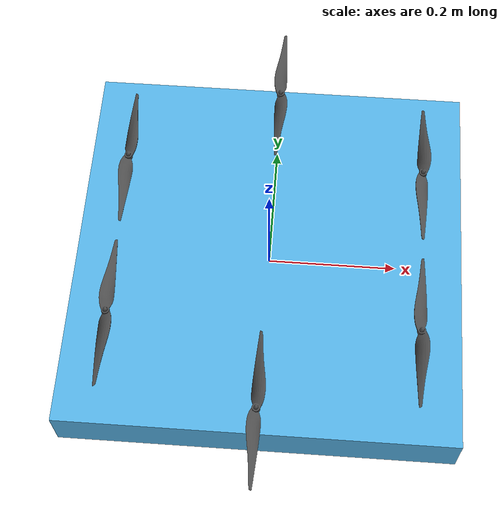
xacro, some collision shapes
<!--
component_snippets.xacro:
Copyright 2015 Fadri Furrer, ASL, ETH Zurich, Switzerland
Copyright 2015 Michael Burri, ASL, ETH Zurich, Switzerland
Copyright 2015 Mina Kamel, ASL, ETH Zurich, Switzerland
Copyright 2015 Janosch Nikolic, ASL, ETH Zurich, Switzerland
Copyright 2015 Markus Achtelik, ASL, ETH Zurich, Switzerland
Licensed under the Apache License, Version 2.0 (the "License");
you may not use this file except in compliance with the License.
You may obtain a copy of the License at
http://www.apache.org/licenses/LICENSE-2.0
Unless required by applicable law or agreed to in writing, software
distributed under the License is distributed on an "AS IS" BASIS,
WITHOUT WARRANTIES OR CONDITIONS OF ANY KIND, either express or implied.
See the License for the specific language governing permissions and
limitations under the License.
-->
<?xml version="1.0"?>

<robot name="dji_f550_c1"
  xmlns:xacro="http://ros.org/wiki/xacro">
  <!-- Properties that can be assigned at build time as arguments.
  Is there a reason not to make all properties arguments?
  -->
  <xacro:arg name='robot_id' default='1' />
  <xacro:arg name='mavlink_addr' default='INADDR_ANY' />
  <xacro:arg name='mavlink_udp_port' default='14560' />
  <xacro:arg name='visual_material' default='DarkGrey' />
  <xacro:arg name='enable_mavlink_interface' default='true' />
  <xacro:arg name='enable_gps_plugin' default='true' />
  <xacro:arg name='gps_noise' default='true' />
  <xacro:arg name='enable_ground_truth' default='false' />
  <xacro:arg name='enable_logging' default='false' />

  <!-- macros for gazebo plugins, sensors -->
  <xacro:include filename="$(find robots_description)/urdf/component_snippets.xacro" />

  <!-- Instantiate dji_f550 "mechanics" -->
  <xacro:include filename="$(find uavs_description)/models/dji_f550_c1/geometry.xacro" />

  <xacro:rgbd_camera_macro
    namespace="dji_f550"
    parent_link="base_link"
    camera_suffix="$(arg robot_id)"
    frame_rate="30"
    horizontal_fov="1.57108"
    focal_length="0"
    image_width="848"
    image_height="480"
    image_format="R8G8B8"
    min_distance="0.01"
    max_distance="100"
    baseline="0.05"
    noise_mean="0.1"
    noise_stddev="0.001"
    >
  <origin xyz="0.16 0 -0.04" rpy="0 0.41887902047863906 0" />
</xacro:rgbd_camera_macro> <!-- focal_length = 0 -> openni plugin computes focal lenght with horizontal field of view  -->

  <xacro:if value="$(arg enable_gps_plugin)">
    <!-- Instantiate gps plugin. -->
    <xacro:gps_plugin_macro namespace="${namespace}" gps_noise="$(arg gps_noise)">
    </xacro:gps_plugin_macro>
  </xacro:if>

  <xacro:if value="$(arg enable_mavlink_interface)">
    <!-- Instantiate mavlink telemetry interface. -->
    <xacro:mavlink_interface_macro
    namespace="${namespace}"
    imu_sub_topic="/imu"
    mavlink_addr="$(arg mavlink_addr)"
    mavlink_udp_port="$(arg mavlink_udp_port)">
    </xacro:mavlink_interface_macro>
  </xacro:if>

  <!-- Mount an ADIS16448 IMU. -->
  <xacro:imu_plugin_macro
  namespace="${namespace}"
  imu_suffix=""
  parent_link="base_link"
  imu_topic="/imu"
  mass_imu_sensor="0.015"
  gyroscope_noise_density="0.0003394"
  gyroscopoe_random_walk="0.000038785"
  gyroscope_bias_correlation_time="1000.0"
  gyroscope_turn_on_bias_sigma="0.0087"
  accelerometer_noise_density="0.004"
  accelerometer_random_walk="0.006"
  accelerometer_bias_correlation_time="300.0"
  accelerometer_turn_on_bias_sigma="0.1960">
    <inertia
    ixx="0.00001" ixy="0.0" ixz="0.0"
    iyy="0.00001" iyz="0.0" izz="0.00001" />
    <origin xyz="0 0 0" rpy="0 0 0" />
  </xacro:imu_plugin_macro>

  <xacro:if
  value="$(arg enable_ground_truth)">
    <!-- Mount an IMU providing ground truth. -->
    <xacro:imu_plugin_macro
    namespace="${namespace}"
    imu_suffix="gt"
    parent_link="base_link"
    imu_topic="ground_truth/imu"
    mass_imu_sensor="0.00001"
    gyroscope_noise_density="0.0"
    gyroscopoe_random_walk="0.0"
    gyroscope_bias_correlation_time="1000.0"
    gyroscope_turn_on_bias_sigma="0.0"
    accelerometer_noise_density="0.0"
    accelerometer_random_walk="0.0"
    accelerometer_bias_correlation_time="300.0"
    accelerometer_turn_on_bias_sigma="0.0">
      <inertia
      ixx="0.00001" ixy="0.0" ixz="0.0"
      iyy="0.00001" iyz="0.0" izz="0.00001" />
      <origin
      xyz="0 0 0"
      rpy="0 0 0" />
    </xacro:imu_plugin_macro>

    <!-- Mount a generic odometry sensor providing ground truth. -->
    <xacro:odometry_plugin_macro
    namespace="${namespace}/ground_truth"
    odometry_sensor_suffix="gt"
    parent_link="base_link"
    pose_topic="pose"
    pose_with_covariance_topic="pose_with_covariance"
    position_topic="position"
    transform_topic="transform"
    odometry_topic="odometry"
    parent_frame_id="world"
    mass_odometry_sensor="0.00001"
    measurement_divisor="1"
    measurement_delay="0"
    unknown_delay="0.0"
    noise_normal_position="0 0 0"
    noise_normal_quaternion="0 0 0"
    noise_normal_linear_velocity="0 0 0"
    noise_normal_angular_velocity="0 0 0"
    noise_uniform_position="0 0 0"
    noise_uniform_quaternion="0 0 0"
    noise_uniform_linear_velocity="0 0 0"
    noise_uniform_angular_velocity="0 0 0"
    enable_odometry_map="false"
    odometry_map=""
    image_scale="">
      <inertia ixx="0.00001"  ixy="0.0"  ixz="0.0"
               iyy="0.00001"  iyz="0.0"  izz="0.00001" /><!-- [kg.m^2] [kg.m^2] [kg.m^2] [kg.m^2] [kg.m^2] [kg.m^2] -->
      <origin xyz="0.0 0.0 0.0" rpy="0.0 0.0 0.0" />
    </xacro:odometry_plugin_macro>
  </xacro:if>

  <xacro:if value="$(arg enable_logging)">
    <!-- Instantiate a logger -->
    <xacro:bag_plugin_macro
    namespace="${namespace}"
    bag_file="$(arg log_file)"
    rotor_velocity_slowdown_sim="${rotor_velocity_slowdown_sim}">
    </xacro:bag_plugin_macro>
  </xacro:if>

</robot>

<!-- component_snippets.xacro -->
<robot xmlns:xacro="http://ros.org/wiki/xacro">
  <!-- Macro to add logging to a bag file. -->
  <xacro:macro name="bag_plugin_macro"
    params="namespace bag_file rotor_velocity_slowdown_sim">
    <gazebo>
      <plugin filename="librotors_gazebo_bag_plugin.so" name="rosbag">
        <robotNamespace>${namespace}</robotNamespace>
        <bagFileName>${bag_file}</bagFileName>
        <linkName>base_link</linkName>
        <frameId>base_link</frameId>
        <commandAttitudeThrustSubTopic>command/attitude</commandAttitudeThrustSubTopic>
        <commandAttitudeThrustPubTopic>command/attitude</commandAttitudeThrustPubTopic>
        <rotorVelocitySlowdownSim>${rotor_velocity_slowdown_sim}</rotorVelocitySlowdownSim>
      </plugin>
    </gazebo>
  </xacro:macro>

  <!-- Macro to add a camera. -->
  <xacro:macro name="camera_macro"
    params="namespace parent_link camera_suffix frame_rate
      horizontal_fov image_width image_height image_format min_distance
      max_distance noise_mean noise_stddev enable_visual *cylinder *origin">
    <link name="${namespace}/camera_${camera_suffix}_link">
      <collision>
        <origin xyz="0 0 0" rpy="0 0 0" />
        <geometry>
          <xacro:insert_block name="cylinder" />
        </geometry>
      </collision>
      <xacro:if value="${enable_visual}">
        <visual>
          <origin xyz="0 0 0" rpy="0 1.57079632679 0" />
          <geometry>
            <xacro:insert_block name="cylinder" />
          </geometry>
          <material name="red" />
        </visual>
      </xacro:if>
      <inertial>
        <mass value="1e-5" />
        <origin xyz="0 0 0" rpy="0 0 0" />
        <inertia ixx="1e-6" ixy="0" ixz="0" iyy="1e-6" iyz="0" izz="1e-6" />
      </inertial>
    </link>
    <joint name="${namespace}/camera_${camera_suffix}_joint" type="fixed">
      <xacro:insert_block name="origin" />
      <parent link="${parent_link}" />
      <child link="${namespace}/camera_${camera_suffix}_link" />
    </joint>
    <gazebo reference="${namespace}/camera_${camera_suffix}_link">
      <sensor type="camera" name="${namespace}_camera_${camera_suffix}">
        <update_rate>${frame_rate}</update_rate>
        <camera name="head">
          <horizontal_fov>${horizontal_fov}</horizontal_fov>
          <image>
            <width>${image_width}</width>
            <height>${image_height}</height>
            <format>${image_format}</format>
          </image>
          <clip>
            <near>${min_distance}</near>
            <far>${max_distance}</far>
          </clip>
          <noise>
            <type>gaussian</type>
            <!-- Noise is sampled independently per pixel on each frame.
                 That pixel's noise value is added to each of its color
                 channels, which at that point lie in the range [0,1]. -->
            <mean>${noise_mean}</mean>
            <stddev>${noise_stddev}</stddev>
          </noise>
        </camera>
        <plugin name="${namespace}_camera_${camera_suffix}_controller" filename="libgazebo_ros_camera.so">
          <robotNamespace>${namespace}</robotNamespace>
          <alwaysOn>true</alwaysOn>
          <updateRate>${frame_rate}</updateRate>
          <cameraName>camera_${camera_suffix}</cameraName>
          <imageTopicName>image_raw</imageTopicName>
          <cameraInfoTopicName>camera_info</cameraInfoTopicName>
          <frameName>camera_${camera_suffix}_link</frameName>
          <hackBaseline>0.0</hackBaseline>
          <distortionK1>0.0</distortionK1>
          <distortionK2>0.0</distortionK2>
          <distortionK3>0.0</distortionK3>
          <distortionT1>0.0</distortionT1>
          <distortionT2>0.0</distortionT2>
        </plugin>
      </sensor>
    </gazebo>
  </xacro:macro>

  <!-- Macro to add the controller interface. -->
  <xacro:macro name="controller_plugin_macro" params="namespace imu_sub_topic">
    <gazebo>
      <plugin name="controller_interface" filename="librotors_gazebo_controller_interface.so">
        <robotNamespace>${namespace}</robotNamespace>
        <commandAttitudeThrustSubTopic>/command/attitude</commandAttitudeThrustSubTopic>
        <commandRateThrustSubTopic>/command/rate</commandRateThrustSubTopic>
        <commandMotorSpeedSubTopic>/command/motor_speed</commandMotorSpeedSubTopic>
        <imuSubTopic>/${imu_sub_topic}</imuSubTopic>
        <motorSpeedCommandPubTopic>/gazebo/command/motor_speed</motorSpeedCommandPubTopic>
      </plugin>
    </gazebo>
  </xacro:macro>

  <!-- Macro to add the gps plugin. -->
  <xacro:macro name="gps_plugin_macro" params="namespace gps_noise">
    <gazebo>
      <plugin name='gps_plugin' filename='libgazebo_gps_plugin.so'>
        <robotNamespace>${namespace}</robotNamespace>
        <gpsNoise>${gps_noise}</gpsNoise>
      </plugin>
    </gazebo>
  </xacro:macro>

  <!-- Macro to add the mavlink interface. -->
  <xacro:macro name="mavlink_interface_macro" params="namespace imu_sub_topic mavlink_addr mavlink_udp_port">
    <gazebo>
      <plugin name="mavlink_interface" filename="librotors_gazebo_mavlink_interface.so">
        <robotNamespace>${namespace}</robotNamespace>
        <imuSubTopic>${imu_sub_topic}</imuSubTopic>
        <gpsSubTopic>/gps</gpsSubTopic>
        <mavlink_addr>$(arg mavlink_addr)</mavlink_addr>
        <mavlink_udp_port>$(arg mavlink_udp_port)</mavlink_udp_port>
        <motorSpeedCommandPubTopic>/gazebo/command/motor_speed</motorSpeedCommandPubTopic>
        <control_channels>
          <channel name="rotor1">
            <input_index>0</input_index>
            <input_offset>0</input_offset>
            <input_scaling>1000</input_scaling>
            <zero_position_disarmed>0</zero_position_disarmed>
            <zero_position_armed>100</zero_position_armed>
            <joint_control_type>velocity</joint_control_type>
          </channel>
          <channel name="rotor2">
            <input_index>1</input_index>
            <input_offset>0</input_offset>
            <input_scaling>1000</input_scaling>
            <zero_position_disarmed>0</zero_position_disarmed>
            <zero_position_armed>100</zero_position_armed>
            <joint_control_type>velocity</joint_control_type>
          </channel>
          <channel name="rotor3">
            <input_index>2</input_index>
            <input_offset>0</input_offset>
            <input_scaling>1000</input_scaling>
            <zero_position_disarmed>0</zero_position_disarmed>
            <zero_position_armed>100</zero_position_armed>
            <joint_control_type>velocity</joint_control_type>
          </channel>
          <channel name="rotor4">
            <input_index>3</input_index>
            <input_offset>0</input_offset>
            <input_scaling>1000</input_scaling>
            <zero_position_disarmed>0</zero_position_disarmed>
            <zero_position_armed>100</zero_position_armed>
            <joint_control_type>velocity</joint_control_type>
          </channel>
          <channel name="rotor5">
            <input_index>4</input_index>
            <input_offset>0</input_offset>
            <input_scaling>1000</input_scaling>
            <zero_position_disarmed>0</zero_position_disarmed>
            <zero_position_armed>100</zero_position_armed>
            <joint_control_type>velocity</joint_control_type>
          </channel>
          <channel name="rotor6">
            <input_index>5</input_index>
            <input_offset>0</input_offset>
            <input_scaling>1000</input_scaling>
            <zero_position_disarmed>0</zero_position_disarmed>
            <zero_position_armed>100</zero_position_armed>
            <joint_control_type>velocity</joint_control_type>
          </channel>
          <channel name="rotor7">
            <input_index>6</input_index>
            <input_offset>0</input_offset>
            <!-- joint limits [-0.524, 0.524] -->
            <input_scaling>0.524</input_scaling>
            <zero_position_disarmed>0</zero_position_disarmed>
            <zero_position_armed>0</zero_position_armed>
            <joint_control_type>position</joint_control_type>
            <joint_name>zephyr_delta_wing::flap_right_joint</joint_name>
            <joint_control_pid>
              <p>10.0</p>
              <i>0</i>
              <d>0</d>
              <iMax>0</iMax>
              <iMin>0</iMin>
              <cmdMax>20</cmdMax>
              <cmdMin>-20</cmdMin>
            </joint_control_pid>
          </channel>
          <channel name="rotor8">
            <input_index>7</input_index>
            <input_offset>0</input_offset>
            <input_scaling>0.524</input_scaling>
            <zero_position_disarmed>0</zero_position_disarmed>
            <zero_position_armed>0</zero_position_armed>
            <joint_control_type>position</joint_control_type>
          </channel>
        </control_channels>
      </plugin>
    </gazebo>
  </xacro:macro>

  <!-- Macro to add an IMU. -->
  <xacro:macro name="imu_plugin_macro"
    params="namespace imu_suffix parent_link imu_topic
      mass_imu_sensor gyroscope_noise_density gyroscopoe_random_walk
      gyroscope_bias_correlation_time gyroscope_turn_on_bias_sigma
      accelerometer_noise_density accelerometer_random_walk
      accelerometer_bias_correlation_time accelerometer_turn_on_bias_sigma
      *inertia *origin">
    <!-- IMU link -->
    <link name="${namespace}/imu${imu_suffix}_link">
      <inertial>
        <xacro:insert_block name="inertia" />
        <mass value="${mass_imu_sensor}" />  <!-- [kg] -->
        <origin xyz="0 0 0" rpy="0 0 0" />
      </inertial>
    </link>
    <!-- IMU joint -->
    <joint name="${namespace}/imu${imu_suffix}_joint" type="revolute">
      <xacro:insert_block name="origin" />
      <parent link="${parent_link}" />
      <child link="${namespace}/imu${imu_suffix}_link" />
      <limit upper="0" lower="0" effort="0" velocity="0" />
    </joint>
    <gazebo>
      <plugin filename="librotors_gazebo_imu_plugin.so" name="rotors_gazebo_imu${imu_suffix}_plugin">
      <!-- A good description of the IMU parameters can be found in the kalibr documentation:
           https://github.com/ethz-asl/kalibr/wiki/IMU-Noise-Model-and-Intrinsics -->
        <robotNamespace>${namespace}</robotNamespace> <!-- (string, required): ros namespace in which the messages are published -->
        <linkName>${namespace}/imu${imu_suffix}_link</linkName> <!-- (string, required): name of the body which holds the IMU sensor -->
        <imuTopic>${imu_topic}</imuTopic> <!-- (string): name of the sensor output topic and prefix of service names (defaults to imu) -->
        <gyroscopeNoiseDensity>${gyroscope_noise_density}</gyroscopeNoiseDensity> <!-- Gyroscope noise density (two-sided spectrum) [rad/s/sqrt(Hz)] -->
        <gyroscopeRandomWalk>${gyroscopoe_random_walk}</gyroscopeRandomWalk> <!-- Gyroscope bias random walk [rad/s/s/sqrt(Hz)] -->
        <gyroscopeBiasCorrelationTime>${gyroscope_bias_correlation_time}</gyroscopeBiasCorrelationTime> <!-- Gyroscope bias correlation time constant [s] -->
        <gyroscopeTurnOnBiasSigma>${gyroscope_turn_on_bias_sigma}</gyroscopeTurnOnBiasSigma> <!-- Gyroscope turn on bias standard deviation [rad/s] -->
        <accelerometerNoiseDensity>${accelerometer_noise_density}</accelerometerNoiseDensity> <!-- Accelerometer noise density (two-sided spectrum) [m/s^2/sqrt(Hz)] -->
        <accelerometerRandomWalk>${accelerometer_random_walk}</accelerometerRandomWalk> <!-- Accelerometer bias random walk. [m/s^2/s/sqrt(Hz)] -->
        <accelerometerBiasCorrelationTime>${accelerometer_bias_correlation_time}</accelerometerBiasCorrelationTime> <!-- Accelerometer bias correlation time constant [s] -->
        <accelerometerTurnOnBiasSigma>${accelerometer_turn_on_bias_sigma}</accelerometerTurnOnBiasSigma> <!-- Accelerometer turn on bias standard deviation [m/s^2] -->
      </plugin>
    </gazebo>
  </xacro:macro>

<!-- Macro to add a generic odometry sensor. -->
  <xacro:macro name="odometry_plugin_macro"
    params="
      namespace odometry_sensor_suffix parent_link pose_topic pose_with_covariance_topic
      position_topic transform_topic odometry_topic parent_frame_id
      mass_odometry_sensor measurement_divisor measurement_delay unknown_delay
      noise_normal_position noise_normal_quaternion noise_normal_linear_velocity
      noise_normal_angular_velocity noise_uniform_position
      noise_uniform_quaternion noise_uniform_linear_velocity
      noise_uniform_angular_velocity enable_odometry_map odometry_map
      image_scale *inertia *origin">
    <!-- odometry link -->
    <link name="${namespace}/odometry_sensor${odometry_sensor_suffix}_link">
      <inertial>
        <xacro:insert_block name="inertia" />
        <mass value="${mass_odometry_sensor}" />  <!-- [kg] -->
      </inertial>
    </link>
    <!-- odometry joint -->
    <joint name="${namespace}/odometry_sensor${odometry_sensor_suffix}_joint" type="revolute">
      <parent link="${parent_link}" />
      <xacro:insert_block name="origin" />
      <child link="${namespace}/odometry_sensor${odometry_sensor_suffix}_link" />
      <limit upper="0" lower="0" effort="0" velocity="0" />
    </joint>
    <gazebo>
      <plugin filename="librotors_gazebo_odometry_plugin.so" name="odometry_sensor${odometry_sensor_suffix}">
        <linkName>${namespace}/odometry_sensor${odometry_sensor_suffix}_link</linkName>
        <robotNamespace>${namespace}</robotNamespace>
        <poseTopic>${pose_topic}</poseTopic>
        <poseWithCovarianceTopic>${pose_with_covariance_topic}</poseWithCovarianceTopic>
        <positionTopic>${position_topic}</positionTopic>
        <transformTopic>${transform_topic}</transformTopic>
        <odometryTopic>${odometry_topic}</odometryTopic>
        <parentFrameId>${parent_frame_id}</parentFrameId>  <!-- Use the scoped link name here. e.g. Model::link. -->
        <measurementDivisor>${measurement_divisor}</measurementDivisor> <!-- only every (seq % measurementDivisor) == 0 measurement is published [int] -->
        <measurementDelay>${measurement_delay}</measurementDelay> <!-- time that measurement gets held back before it's published in [simulation cycles (int)] -->
        <unknownDelay>${unknown_delay}</unknownDelay> <!-- additional delay, that just gets added to the timestamp [s] -->
        <noiseNormalPosition>${noise_normal_position}</noiseNormalPosition> <!-- standard deviation of additive white gaussian noise [m] -->
        <noiseNormalQuaternion>${noise_normal_quaternion}</noiseNormalQuaternion> <!-- standard deviation white gaussian noise [rad]: q_m = q*quaternionFromSmallAngleApproximation(noiseNormalQ) -->
        <noiseNormalLinearVelocity>${noise_normal_linear_velocity}</noiseNormalLinearVelocity> <!-- standard deviation of additive white gaussian noise [m/s] -->
        <noiseNormalAngularVelocity>${noise_normal_angular_velocity}</noiseNormalAngularVelocity> <!-- standard deviation of additive white gaussian noise [rad/s] -->
        <noiseUniformPosition>${noise_uniform_position}</noiseUniformPosition> <!-- symmetric bounds of uniform noise [m] -->
        <noiseUniformQuaternion>${noise_uniform_quaternion}</noiseUniformQuaternion> <!-- symmetric bounds of uniform noise [rad], computation see above -->
        <noiseUniformLinearVelocity>${noise_uniform_linear_velocity}</noiseUniformLinearVelocity>  <!-- symmetric bounds of uniform noise [m/s] -->
        <noiseUniformAngularVelocity>${noise_uniform_angular_velocity}</noiseUniformAngularVelocity>  <!-- symmetric bounds of uniform noise [rad/s] -->
        <xacro:if value="${enable_odometry_map}">
          <covarianceImage>package://rotors_gazebo/resource/${odometry_map}</covarianceImage>
          <covarianceImageScale>${image_scale}</covarianceImageScale>
        </xacro:if>
      </plugin>
    </gazebo>
  </xacro:macro>

  <!-- Macro to add the wind plugin. -->
  <xacro:macro name="wind_plugin_macro"
    params="namespace xyz_offset wind_direction wind_force_mean
      wind_gust_direction wind_gust_duration wind_gust_start
      wind_gust_force_mean">
    <gazebo>
      <plugin filename="librotors_gazebo_wind_plugin.so" name="wind_plugin">
        <frameId>base_link</frameId>
        <linkName>base_link</linkName>
        <robotNamespace>${namespace}</robotNamespace>
        <xyzOffset>${xyz_offset}</xyzOffset>
        <windDirection>${wind_direction}</windDirection>
        <windForceMean>${wind_force_mean}</windForceMean>
        <windGustDirection>${wind_gust_direction}</windGustDirection>
        <windGustDuration>${wind_gust_duration}</windGustDuration>
        <windGustStart>${wind_gust_start}</windGustStart>
        <windGustForceMean>${wind_gust_force_mean}</windGustForceMean>
      </plugin>
    </gazebo>
  </xacro:macro>

  <!-- VI sensor macros -->
  <!-- Macro to add a VI-sensor camera. -->
  <xacro:macro name="vi_sensor_camera_macro"
    params="namespace parent_link camera_suffix frame_rate *origin">
    <xacro:camera_macro
      namespace="${namespace}"
      parent_link="${parent_link}"
      camera_suffix="${camera_suffix}"
      frame_rate="${frame_rate}"
      horizontal_fov="1.3962634"
      image_width="752"
      image_height="480"
      image_format="L8"
      min_distance="0.02"
      max_distance="30"
      noise_mean="0.0"
      noise_stddev="0.007"
      enable_visual="false">
      <cylinder length="0.01" radius="0.007" />
      <xacro:insert_block name="origin" />
    </xacro:camera_macro>
  </xacro:macro>

  <!-- Macro to add a depth camera on the VI-sensor. -->
  <xacro:macro name="vi_sensor_depth_macro"
    params="namespace parent_link camera_suffix frame_rate *origin">
    <link name="${namespace}/camera_${camera_suffix}_link">
      <collision>
        <origin xyz="0 0 0" rpy="0 0 0" />
        <geometry>
          <cylinder length="0.01" radius="0.007" />
        </geometry>
      </collision>
      <inertial>
        <mass value="1e-5" />
        <origin xyz="0 0 0" rpy="0 0 0" />
        <inertia ixx="1e-6" ixy="0" ixz="0" iyy="1e-6" iyz="0" izz="1e-6" />
      </inertial>
    </link>
    <joint name="${namespace}/camera_${camera_suffix}_joint" type="fixed">
      <xacro:insert_block name="origin" />
      <parent link="${parent_link}" />
      <child link="${namespace}/camera_${camera_suffix}_link" />
      <limit upper="0" lower="0" effort="0" velocity="0" />
    </joint>
    <!-- Optical center of camera -->
    <link name="${namespace}/camera_${camera_suffix}_optical_center_link" />
    <joint name="${namespace}/camera_${camera_suffix}_optical_center_joint" type="fixed">
      <origin xyz="0 0 0" rpy="${-PI/2} 0 ${-PI/2}" />
      <parent link="${namespace}/camera_${camera_suffix}_link" />
      <child link="${namespace}/camera_${camera_suffix}_optical_center_link" />
      <limit upper="0" lower="0" effort="0" velocity="0" />
    </joint>
    <gazebo reference="${namespace}/camera_${camera_suffix}_link">
      <sensor type="depth" name="${namespace}_camera_{camera_suffix}">
        <always_on>true</always_on>
        <update_rate>${frame_rate}</update_rate>
        <camera>
          <horizontal_fov>2</horizontal_fov>
          <image>
            <format>L8</format>
            <width>640</width>
            <height>480</height>
          </image>
          <clip>
            <near>0.01</near>
            <far>100</far>
          </clip>
        </camera>
        <plugin name="${namespace}_camera_{camera_suffix}" filename="libgazebo_ros_openni_kinect.so">
          <robotNamespace>${namespace}</robotNamespace>
          <alwaysOn>true</alwaysOn>
          <baseline>0.11</baseline>
          <updateRate>${frame_rate}</updateRate>
          <cameraName>camera_${camera_suffix}</cameraName>
          <imageTopicName>camera/image_raw</imageTopicName>
          <cameraInfoTopicName>camera/camera_info</cameraInfoTopicName>
          <depthImageTopicName>depth/disparity</depthImageTopicName>
          <depthImageCameraInfoTopicName>depth/camera_info</depthImageCameraInfoTopicName>
          <pointCloudTopicName>depth/points</pointCloudTopicName>
          <frameName>camera_${camera_suffix}_optical_center_link</frameName>
          <pointCloudCutoff>0.5</pointCloudCutoff>
          <distortionK1>0.0</distortionK1>
          <distortionK2>0.0</distortionK2>
          <distortionK3>0.0</distortionK3>
          <distortionT1>0.0</distortionT1>
          <distortionT2>0.0</distortionT2>
        </plugin>
      </sensor>
    </gazebo>
  </xacro:macro>

  <!-- VI-Sensor Macro -->
  <xacro:macro name="vi_sensor_macro" params="namespace parent_link *origin">
    <!-- Vi Sensor Link -->
    <link name="${namespace}/vi_sensor_link">
      <collision>
        <origin xyz="0 0 0" rpy="0 0 0" />
        <geometry>
          <box size="0.03 0.133 0.057" />
        </geometry>
      </collision>

      <visual>
        <origin xyz="0 0 0" rpy="0 0 0" />
        <geometry>
          <mesh filename="package://rotors_description/meshes/vi_sensor.dae" scale="1 1 1" />
        </geometry>
      </visual>

      <inertial>
        <mass value="0.13" />
        <origin xyz="0 0 0" rpy="0 0 0" />
        <inertia ixx="1e-6" ixy="0" ixz="0" iyy="1e-6" iyz="0" izz="1e-6" />
      </inertial>
    </link>
    <joint name="{namespace}_vi_sensor_joint" type="fixed">
      <xacro:insert_block name="origin" />
      <parent link="${parent_link}" />
      <child link="${namespace}/vi_sensor_link" />
    </joint>
    <!-- Cameras -->
    <xacro:if value="$(arg enable_cameras)">
      <!-- Left Camera -->
      <xacro:vi_sensor_camera_macro
        namespace="${namespace}" parent_link="${namespace}/vi_sensor_link"
        camera_suffix="left" frame_rate="30.0">
        <origin xyz="0.015 0.055 0.0065" rpy="0 0 0" />
      </xacro:vi_sensor_camera_macro>
      <!-- Right Camera -->
      <xacro:vi_sensor_camera_macro namespace="${namespace}"
        parent_link="${namespace}/vi_sensor_link"
        camera_suffix="right" frame_rate="30.0">
        <origin xyz="0.015 -0.055 0.0065" rpy="0 0 0" />
      </xacro:vi_sensor_camera_macro>
    </xacro:if>

    <!-- Depth Sensor -->
    <xacro:if value="$(arg enable_depth)">
      <xacro:vi_sensor_depth_macro
        namespace="${namespace}" parent_link="${namespace}/vi_sensor_link"
        camera_suffix="depth" frame_rate="30.0">
        <origin xyz="0.015 0.055 0.0065" rpy="0 0 0" />
      </xacro:vi_sensor_depth_macro>
    </xacro:if>

    <!-- Groundtruth -->
    <xacro:if value="$(arg enable_ground_truth)">
      <!-- Odometry Sensor -->
      <xacro:odometry_plugin_macro
        namespace="${namespace}/ground_truth"
        odometry_sensor_suffix=""
        parent_link="${namespace}/vi_sensor_link"
        pose_topic="pose"
        pose_with_covariance_topic="pose_with_covariance"
        position_topic="position"
        transform_topic="transform"
        odometry_topic="odometry"
        parent_frame_id="world"
        mass_odometry_sensor="0.00001"
        measurement_divisor="1"
        measurement_delay="0"
        unknown_delay="0.0"
        noise_normal_position="0 0 0"
        noise_normal_quaternion="0 0 0"
        noise_normal_linear_velocity="0 0 0"
        noise_normal_angular_velocity="0 0 0"
        noise_uniform_position="0 0 0"
        noise_uniform_quaternion="0 0 0"
        noise_uniform_linear_velocity="0 0 0"
        noise_uniform_angular_velocity="0 0 0"
        enable_odometry_map="false"
        odometry_map=""
        image_scale="">
        <inertia ixx="0.00001" ixy="0.0" ixz="0.0" iyy="0.00001" iyz="0.0" izz="0.00001" /> <!-- [kg.m^2] [kg.m^2] [kg.m^2] [kg.m^2] [kg.m^2] [kg.m^2] -->
        <origin xyz="0.0 0.0 0.0" rpy="0.0 0.0 0.0" />
      </xacro:odometry_plugin_macro>
    </xacro:if>

    <!-- ADIS16448 IMU. -->
    <xacro:imu_plugin_macro
      namespace="${namespace}"
      imu_suffix=""
      parent_link="${namespace}/vi_sensor_link"
      imu_topic="/imu"
      mass_imu_sensor="0.015"
      gyroscope_noise_density="0.0003394"
      gyroscopoe_random_walk="0.000038785"
      gyroscope_bias_correlation_time="1000.0"
      gyroscope_turn_on_bias_sigma="0.0087"
      accelerometer_noise_density="0.004"
      accelerometer_random_walk="0.006"
      accelerometer_bias_correlation_time="300.0"
      accelerometer_turn_on_bias_sigma="0.1960">
      <inertia ixx="0.00001" ixy="0.0" ixz="0.0" iyy="0.00001" iyz="0.0" izz="0.00001" />
      <origin xyz="0.015 0 0.0113" rpy="0 0 0" />
    </xacro:imu_plugin_macro>
  </xacro:macro>

  <!-- Macro to add a Teraranger Sensor. -->

<xacro:macro name="teraranger_macro"
  params="namespace parent_link teraranger_suffix">
  <link name="${namespace}/teraranger_${teraranger_suffix}_link"> <!-- base ir front -->
     <collision>
      <origin xyz="0 0 0" rpy="0 0 0"/>
      <geometry>
        <box size="0.01 0.01 0.01"/>
      </geometry>
    </collision>
    <visual>
      <origin xyz="0 0 0" rpy="0 0 0"/>
      <geometry>
        <box size="0.01 0.01 0.01"/>
      </geometry>
    </visual>
    <inertial>
      <mass value="1e-5" />
      <origin xyz="0 0 0" rpy="0 0 0"/>
      <inertia ixx="1e-6" ixy="0" ixz="0" iyy="1e-6" iyz="0"      izz="1e-6" />
    </inertial>
</link>

  <joint name="${namespace}/teraranger_${teraranger_suffix}_joint" type="fixed"> <!-- ir front joint -->
    <axis xyz="0 1 0" />
    <origin rpy="0 0 0" xyz="0.5 0 0" />
    <parent link="${parent_link}"/>
    <child link="${namespace}/teraranger_${teraranger_suffix}_link"/>
</joint>

<!-- plugin for Teraranger Sensor -->

 <gazebo reference="${namespace}/teraranger_${teraranger_suffix}_link">
   <sensor type="ray" name="${namespace}_teraranger_${teraranger_suffix}">
      <pose>0 0 0 0 0 0</pose>
      <visualize>true</visualize>
      <update_rate>50</update_rate>
      <ray>
         <scan>
            <horizontal>
               <samples>10</samples>
               <resolution>1</resolution>
               <min_angle>-0.14835</min_angle>
               <max_angle>0.14835</max_angle>
            </horizontal>
            <vertical>
               <samples>10</samples>
               <resolution>1</resolution>
               <min_angle>-0.14835</min_angle>
               <max_angle>0.14835</max_angle>
            </vertical>
         </scan>
         <range>
            <min>0.01</min>
            <max>2</max>
            <resolution>0.02</resolution>
         </range>
      </ray>
      <plugin filename="libgazebo_ros_range.so" name="${namespace}_teraranger_${teraranger_suffix}gazebo_ros_range">
         <gaussianNoise>0.005</gaussianNoise>
         <alwaysOn>true</alwaysOn>
         <updateRate>50</updateRate>
         <topicName>${namespace}/teraranger_${teraranger_suffix}/sensor/ir_frontalDuo1</topicName>
         <frameName>${namespace}_teraranger_${teraranger_suffix}_link</frameName>
         <radiation>INFRARED</radiation>
         <fov>0.2967</fov>
      </plugin>
   </sensor>
   </gazebo>

</xacro:macro>

<!-- KINECT -->
<xacro:macro name='kinect_macro'
  params="namespace parent_link camera_suffix">
    <link name="${namespace}/kinect_${camera_suffix}_link">
      <inertial>
      <mass value="1e-5" />
      <origin xyz="0 0 0" rpy="0 0 0"/>
      <inertia ixx="1e-6" ixy="0" ixz="0" iyy="1e-6" iyz="0"      izz="1e-6" />
    </inertial>
      <self_collide>0</self_collide>
      <enable_wind>0</enable_wind>
      <kinematic>0</kinematic>
      <pose frame=''>0 0 0 0 -0 0</pose>
      <visual name='visual'>
        <geometry>
          <box size="0.01 0.01 0.01"/>
        </geometry>
        <pose frame=''>0 0 0 0 -0 0</pose>
        <transparency>0</transparency>
        <cast_shadows>1</cast_shadows>
      </visual>
      <collision name='collision'>
        <laser_retro>0</laser_retro>
        <max_contacts>10</max_contacts>
        <pose frame=''>0 0 0 0 -0 0</pose>
        <geometry>
           <box size="0.01 0.01 0.01"/>
        </geometry>
        <surface>
          <friction>
            <ode>
              <mu>1</mu>
              <mu2>1</mu2>
              <fdir1>0 0 0</fdir1>
              <slip1>0</slip1>
              <slip2>0</slip2>
            </ode>
            <torsional>
              <coefficient>1</coefficient>
              <patch_radius>0</patch_radius>
              <surface_radius>0</surface_radius>
              <use_patch_radius>1</use_patch_radius>
              <ode>
                <slip>0</slip>
              </ode>
            </torsional>
          </friction>
          <bounce>
            <restitution_coefficient>0</restitution_coefficient>
            <threshold>1e+06</threshold>
          </bounce>
          <contact>
            <collide_without_contact>0</collide_without_contact>
            <collide_without_contact_bitmask>1</collide_without_contact_bitmask>
            <collide_bitmask>1</collide_bitmask>
            <ode>
              <soft_cfm>0</soft_cfm>
              <soft_erp>0.2</soft_erp>
              <kp>1e+13</kp>
              <kd>1</kd>
              <max_vel>0.01</max_vel>
              <min_depth>0</min_depth>
            </ode>
            <bullet>
              <split_impulse>1</split_impulse>
              <split_impulse_penetration_threshold>-0.01</split_impulse_penetration_threshold>
              <soft_cfm>0</soft_cfm>
              <soft_erp>0.2</soft_erp>
              <kp>1e+13</kp>
              <kd>1</kd>
            </bullet>
          </contact>
        </surface>
      </collision>
    </link>

    <static>0</static>
    <allow_auto_disable>1</allow_auto_disable>

    <joint name="${namespace}/kinect_${camera_suffix}_joint" type="fixed">
      <axis xyz="0 1 0" />
      <origin rpy="0 0 0" xyz="0.5 0 0" />
      <parent link="${parent_link}"/>
      <child link="${namespace}/kinect_${camera_suffix}_link"/>
    </joint>
    <gazebo reference="${namespace}/kinect_${camera_suffix}_link">
      <sensor name='camera_kinect' type='depth'>
          <update_rate>20</update_rate>
          <camera name='__default__'>
            <horizontal_fov>1.0472</horizontal_fov>
            <image>
              <width>8</width>
              <height>8</height>
              <format>R8G8B8</format>
            </image>
            <clip>
              <near>0.1</near>
              <far>5</far>
            </clip>
          </camera>
          <plugin name='camera_plugin' filename='libgazebo_ros_openni_kinect.so'>
            <baseline>0.2</baseline>
            <alwaysOn>1</alwaysOn>
            <updateRate>0.0</updateRate>
            <robotNamespace>${namespace}</robotNamespace>
            <cameraName>camera_kinect</cameraName>
            <imageTopicName>camera_kinect/depth/image_raw</imageTopicName>
            <cameraInfoTopicName>camera_kinect/depth/camera_info</cameraInfoTopicName>
            <depthImageTopicName>camera_kinect/depth/depth_image_raw</depthImageTopicName>
            <depthImageInfoTopicName>camera_kinect/depth/camera_info_depth</depthImageInfoTopicName>
            <pointCloudTopicName>camera_kinect/depth/pointsCloud</pointCloudTopicName>
            <frameName>/uav_1</frameName>
            <pointCloudCutoff>0.05</pointCloudCutoff>
            <distortionK1>0</distortionK1>
            <distortionK2>0</distortionK2>
            <distortionK3>0</distortionK3>
            <distortionT1>0</distortionT1>
            <distortionT2>0</distortionT2>
            <CxPrime>0</CxPrime>
            <Cx>0</Cx>
            <Cy>0</Cy>
            <focalLength>0</focalLength>
            <hackBaseline>0</hackBaseline>
          </plugin>
        </sensor>
      </gazebo>

  </xacro:macro>

<!-- MyraBot Kinect -->
<xacro:macro name="kinect" params="parent_link *origin">

  <joint name="base_camera_joint" type="fixed">
	<xacro:insert_block name="origin" />
    <parent link="${parent_link}" />
    <child link="camera_link" />
  </joint>

  <link name="camera_link">
    <inertial>
      <mass value="0.01" />
      <origin xyz="0 0 0" />
      <inertia ixx="0.001" ixy="0.0" ixz="0.0"
        iyy="0.001" iyz="0.0"
        izz="0.001" />
    </inertial>

    <visual>
      <origin xyz=" 0 0 0 " rpy="0 0 0" />
      <geometry>
        <box size="0.01 0.01 0.01"/>
      </geometry>
    </visual>

    <collision>
      <origin xyz="0.0 0.0 0.0" rpy="0 0 0" />
      <geometry>
        <box size="0.01 0.01 0.01"/>
      </geometry>
    </collision>

  </link>

  <joint name="camera_depth_joint" type="fixed">
    <origin xyz="0 0.018 0" rpy="0 0 0" />
    <parent link="camera_link" />
    <child link="camera_depth_frame" />
  </joint>

  <link name="camera_depth_frame">
    <inertial>
      <mass value="0.01" />
      <origin xyz="0 0 0" />
      <inertia ixx="0.001" ixy="0.0" ixz="0.0"
        iyy="0.001" iyz="0.0"
        izz="0.001" />
    </inertial>
  </link>

  <joint name="camera_depth_optical_joint" type="fixed">
    <origin xyz="0 0 0" rpy="${-3.1416/2} 0 ${-3.1416/2}" />
    <parent link="camera_depth_frame" />
    <child link="camera_depth_optical_frame" />
  </joint>

  <link name="camera_depth_optical_frame">
    <inertial>
      <mass value="0.001" />
      <origin xyz="0 0 0" />
      <inertia ixx="0.0001" ixy="0.0" ixz="0.0"
        iyy="0.0001" iyz="0.0"
        izz="0.0001" />
    </inertial>
  </link>

  <joint name="camera_rgb_joint" type="fixed">
    <origin xyz="0 -0.005 0" rpy="0 0 0" />
    <parent link="camera_link" />
    <child link="camera_rgb_frame" />
  </joint>

  <link name="camera_rgb_frame">
    <inertial>
      <mass value="0.001" />
      <origin xyz="0 0 0" />
      <inertia ixx="0.0001" ixy="0.0" ixz="0.0"
        iyy="0.0001" iyz="0.0"
        izz="0.0001" />
    </inertial>
  </link>

  <joint name="camera_rgb_optical_joint" type="fixed">
    <origin xyz="0 0 0" rpy="${-3.1416/2} 0 ${-3.1416/2}" />
    <parent link="camera_rgb_frame" />
    <child link="camera_rgb_optical_frame" />
  </joint>

  <link name="camera_rgb_optical_frame">
    <inertial>
      <mass value="0.001" />
      <origin xyz="0 0 0" />
      <inertia ixx="0.0001" ixy="0.0" ixz="0.0"
        iyy="0.0001" iyz="0.0"
        izz="0.0001" />
    </inertial>
  </link>

  <gazebo reference="camera_link">
    <sensor name="camera" type="camera">
      <update_rate>20</update_rate>
      <camera name="myra">
      <image>
        <width>8</width>
        <height>8</height>
        <format>R8G8B8</format>
      </image>
      <horizontal_fov>1.0472</horizontal_fov>
      <clip>
        <near>0.05</near>
        <far>5</far>
      </clip>
      </camera>

      <plugin name="kinect_camera_controller" filename="libgazebo_ros_openni_kinect.so">
        <baseline>0.1</baseline>
        <alwaysOn>true</alwaysOn>
        <updateRate>20</updateRate>
        <robotNamespace>${namespace}</robotNamespace>
        <imageTopicName>/camera/image_raw</imageTopicName>
        <pointCloudTopicName>/camera/depth/points</pointCloudTopicName>
        <cameraInfoTopicName>/camera/camera_info</cameraInfoTopicName>
        <frameName>camera_depth_optical_frame</frameName>
        <distortion_k1>0.0</distortion_k1>
        <distortion_k2>0.0</distortion_k2>
        <distortion_k3>0.0</distortion_k3>
        <distortion_t1>0.0</distortion_t1>
        <distortion_t2>0.0</distortion_t2>
      </plugin>
    </sensor>
  </gazebo>

</xacro:macro>

<!-- Installing Hokuyo-->

<!-- Macro to add a laser Hokuyo. -->

 <xacro:macro name="hokuyo" params="name namespace parent *origin ros_topic update_rate ray_count min_angle max_angle">
   <link name="${namespace}_hokuyo_link">
     <collision>
       <origin xyz="0 0 0" rpy="0 0 0" />
       <geometry>
         <cylinder length="0.03" radius="0.015"/>
       </geometry>
     </collision>
     <visual>
       <origin xyz="0 0 0" rpy="0 0 0" />
       <geometry>
         <cylinder length="0.03" radius="0.015"/>
         <!--mesh filename="package://home/agugrvc/catkin_ws/src/grvc-ual/ball_description/models/bola/meshes/hokuyo_utm_30lx.dae"/-->
       </geometry>
     </visual>
     <inertial>
       <mass value="1e-5" />
       <origin xyz="0 0 0" rpy="0 0 0" />
       <inertia ixx="1e-6" ixy="0" ixz="0" iyy="1e-6" iyz="0" izz="1e-6" />
     </inertial>
   </link>
   <joint name="${namespace}_hokuyo_joint" type="fixed">
     <xacro:insert_block name="origin" />
     <parent link="${parent}" />
     <child link="${namespace}_hokuyo_link" />
   </joint>
   <gazebo reference="${namespace}_hokuyo_link">
     <sensor type="ray" name="laser">
       <pose>0 0 0 0 0 0</pose>
       <ray>
         <scan>
           <horizontal>
             <samples>${ray_count}</samples>
             <resolution>1</resolution>
             <min_angle>${min_angle}</min_angle>
             <max_angle>${max_angle}</max_angle>
           </horizontal>
         </scan>
         <range>
           <min>0.08</min>
           <max>40</max>
           <resolution>0.01</resolution>
         </range>
       </ray>
           <plugin name="laser" filename="libgazebo_ros_laser.so">
             <frameName>/hokuyo_frame</frameName>
             <robotNamespace>${namespace}</robotNamespace>
             <topicName>${ros_topic}</topicName>
             <always_on>1</always_on>
           <update_rate>${update_rate}</update_rate>
           <visualize>true</visualize>
       </plugin>
     </sensor>
   </gazebo>
 </xacro:macro>

</robot>

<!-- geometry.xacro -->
<robot name="dji_f550_c1"
  xmlns:xacro="http://ros.org/wiki/xacro">
  <!-- Properties -->
  <xacro:property name="model_name" value="dji_f550_c1" />
  <xacro:property name="description_package" value="uavs_description" />
  <xacro:property name="namespace" value="" />
  <xacro:property name="rotor_velocity_slowdown_sim" value="1" />
  <xacro:property name="mesh_file" value="visual.dae" />
  <xacro:property name="mesh_scale" value="1 1 1"/>
  <xacro:property name="mesh_scale_prop" value="1 1 1"/>
  <xacro:property name="mass" value="5.850" />
  <!-- [kg] -->
  <xacro:property name="body_width" value="0.600" />
  <xacro:property name="body_height" value="0.08" />
  <xacro:property name="mass_rotor" value="0.005" />
  <!-- [kg] -->
  <xacro:property name="rotor_offset_top" value="0.0" />
  <xacro:property name="radius_rotor" value="0.12" />
  <xacro:property name="motor_constant" value="20.0e-06" />
  <!-- [kg.m/s^2] -->
  <xacro:property name="moment_constant" value="0.12" />
  <xacro:property name="time_constant_up" value="0.0125" />
  <xacro:property name="time_constant_down" value="0.025" />
  <xacro:property name="max_rot_velocity" value="11000" />
  <!-- [rad/s] -->
  <xacro:property name="sin30" value="0.5" />
  <xacro:property name="cos30" value="0.866025403784" />
  <xacro:property name="sqrt2" value="1.4142135623730951" />
  <xacro:property name="rotor_drag_coefficient" value="8.06428e-04" />
  <xacro:property name="rolling_moment_coefficient" value="0.000001" />
  <xacro:property name="color" value="$(arg visual_material)" />

  <!-- Property Blocks -->
  <xacro:property name="body_inertia">
    <inertia ixx="0.287" ixy="0.0" ixz="0.0" iyy="0.287" iyz="0.0" izz="0.468" />
    <!-- [kg.m^2] [kg.m^2] [kg.m^2] [kg.m^2] [kg.m^2] [kg.m^2] -->
  </xacro:property>

  <!-- inertia of a single rotor, copied from iris drone blades -->
  <xacro:property name="rotor_inertia">
    <inertia ixx="0.00000097" iyy="0.00027310" izz="0.00027310" ixy="0.0" ixz="0.0" iyz="0.0" />
    <!-- [kg.m^2] [kg.m^2] [kg.m^2] [kg.m^2] [kg.m^2] [kg.m^2] -->
  </xacro:property>

  <!-- Included URDF Files -->
  <xacro:include filename="$(find robots_description)/urdf/multirotor_base.xacro" />
  <xacro:include filename="$(find robots_description)/urdf/component_snippets.xacro" />

  <!-- Instantiate multirotor_base_macro once -->
  <xacro:multirotor_base_macro description_package="${description_package}" model_name="${model_name}" robot_namespace="${namespace}" mass="${mass}" body_width="${body_width}" body_height="${body_height}" height_offset="0.0" mesh_file="${mesh_file}" mesh_scale="${mesh_scale}" color="">
    <xacro:insert_block name="body_inertia" />
  </xacro:multirotor_base_macro>

  <!-- Visual RGB-D camera -->
  <xacro:macro name="rgbd_camera_macro" params="namespace parent_link camera_suffix frame_rate
      horizontal_fov focal_length image_width image_height image_format min_distance
      max_distance baseline noise_mean noise_stddev *origin">
    <link name='camera_link'>
      <xacro:insert_block name="origin" />
      <collision>
        <origin xyz="0 0 0" rpy="0 0 0" />
        <geometry>
          <cylinder radius="0.01" length="0.05"/>
        </geometry>
      </collision>
      <inertial>
        <mass value="1e-5" />
        <origin xyz="0 0 0" rpy="0 0 0" />
        <inertia ixx="1e-6" ixy="0" ixz="0" iyy="1e-6" iyz="0" izz="1e-6" />
      </inertial>
    </link>
    <gazebo reference="camera_link">
      <sensor name='camera' type='depth'>
        <update_rate>${frame_rate}</update_rate>
        <camera name='intel_d435'>
          <horizontal_fov>${horizontal_fov}</horizontal_fov>
          <image>
            <width>${image_width}</width>
            <height>${image_height}</height>
            <format>${image_format}</format>
          </image>
          <clip>
            <near>${min_distance}</near>
            <far>${max_distance}</far>
          </clip>
          <noise>
            <type>gaussian</type>
            <!-- Noise is sampled independently per pixel on each frame.
                 That pixel's noise value is added to each of its color
                 channels, which at that point lie in the range [0,1]. -->
            <mean>${noise_mean}</mean>
            <stddev>${noise_stddev}</stddev>
          </noise>
        </camera>
        <plugin name='intel_D435_plugin' filename='libgazebo_ros_openni_kinect.so'>
          <baseline>${baseline}</baseline>
          <alwaysOn>1</alwaysOn>
          <updateRate>${frame_rate}</updateRate>
          <cameraName>${namespace}_camera_${camera_suffix}</cameraName>
          <imageTopicName>rgb/image_raw</imageTopicName>
          <cameraInfoTopicName>rgb/camera_info</cameraInfoTopicName>
          <depthImageTopicName>depth/image_raw</depthImageTopicName>
          <depthImageInfoTopicName>depth/camera_info</depthImageInfoTopicName>
          <pointCloudTopicName>depth/points</pointCloudTopicName>
          <frameName>camera_link</frameName>
          <pointCloudCutoff>0.15</pointCloudCutoff>
          <pointCloudCutoffMax>10</pointCloudCutoffMax>
          <distortionK1>0</distortionK1>
          <distortionK2>0</distortionK2>
          <distortionK3>0</distortionK3>
          <distortionT1>0</distortionT1>
          <distortionT2>0</distortionT2>
          <CxPrime>0</CxPrime>
          <Cx>0</Cx>
          <Cy>0</Cy>
          <focalLength>${focal_length}</focalLength>
          <hackBaseline>0</hackBaseline>
        </plugin>
      </sensor>
    </gazebo>

    <joint name="${namespace}/camera_joint" type="fixed">
      <origin xyz="0.16 0 -0.04" rpy="0 0.41887902047863906 0" />
      <parent link="${parent_link}" />
      <child link="camera_link" />
    </joint>
  </xacro:macro>

  <!-- Instantiate rotors -->
  <xacro:vertical_rotor description_package="${description_package}" robot_namespace="${namespace}" suffix="right" direction="cw" motor_constant="${motor_constant}" moment_constant="${moment_constant}" parent="base_link" mass_rotor="${mass_rotor}" radius_rotor="${radius_rotor}" time_constant_up="${time_constant_up}" time_constant_down="${time_constant_down}" max_rot_velocity="${max_rot_velocity}" motor_number="0" rotor_drag_coefficient="${rotor_drag_coefficient}" rolling_moment_coefficient="${rolling_moment_coefficient}" mesh="prop" mesh_scale="${mesh_scale_prop}" color="DarkGrey">
    <origin xyz="0 -0.272 0.074" rpy="0 0 0" />
    <xacro:insert_block name="rotor_inertia" />
  </xacro:vertical_rotor>

  <xacro:vertical_rotor description_package="${description_package}" robot_namespace="${namespace}" suffix="left" direction="ccw" motor_constant="${motor_constant}" moment_constant="${moment_constant}" parent="base_link" mass_rotor="${mass_rotor}" radius_rotor="${radius_rotor}" time_constant_up="${time_constant_up}" time_constant_down="${time_constant_down}" max_rot_velocity="${max_rot_velocity}" motor_number="1" rotor_drag_coefficient="${rotor_drag_coefficient}" rolling_moment_coefficient="${rolling_moment_coefficient}" mesh="prop" mesh_scale="${mesh_scale_prop}" color="DarkGrey">
    <origin xyz="0 0.272 0.074" rpy="0 0 0" />
    <xacro:insert_block name="rotor_inertia" />
  </xacro:vertical_rotor>

  <xacro:vertical_rotor description_package="${description_package}" robot_namespace="${namespace}" suffix="front_left" direction="cw" motor_constant="${motor_constant}" moment_constant="${moment_constant}" parent="base_link" mass_rotor="${mass_rotor}" radius_rotor="${radius_rotor}" time_constant_up="${time_constant_up}" time_constant_down="${time_constant_down}" max_rot_velocity="${max_rot_velocity}" motor_number="2" rotor_drag_coefficient="${rotor_drag_coefficient}" rolling_moment_coefficient="${rolling_moment_coefficient}" mesh="prop" mesh_scale="${mesh_scale_prop}" color="${color}">
    <origin xyz="0.23556 0.136 0.074" rpy="0 0 0" />
    <xacro:insert_block name="rotor_inertia" />
  </xacro:vertical_rotor>

  <xacro:vertical_rotor description_package="${description_package}" robot_namespace="${namespace}" suffix="back_right" direction="ccw" motor_constant="${motor_constant}" moment_constant="${moment_constant}" parent="base_link" mass_rotor="${mass_rotor}" radius_rotor="${radius_rotor}" time_constant_up="${time_constant_up}" time_constant_down="${time_constant_down}" max_rot_velocity="${max_rot_velocity}" motor_number="3" rotor_drag_coefficient="${rotor_drag_coefficient}" rolling_moment_coefficient="${rolling_moment_coefficient}" mesh="prop" mesh_scale="${mesh_scale_prop}" color="DarkGrey">
    <origin xyz="-0.23556 -0.136 0.074" rpy="0 0 0" />
    <xacro:insert_block name="rotor_inertia" />
  </xacro:vertical_rotor>

  <xacro:vertical_rotor description_package="${description_package}" robot_namespace="${namespace}" suffix="front_right" direction="ccw" motor_constant="${motor_constant}" moment_constant="${moment_constant}" parent="base_link" mass_rotor="${mass_rotor}" radius_rotor="${radius_rotor}" time_constant_up="${time_constant_up}" time_constant_down="${time_constant_down}" max_rot_velocity="${max_rot_velocity}" motor_number="4" rotor_drag_coefficient="${rotor_drag_coefficient}" rolling_moment_coefficient="${rolling_moment_coefficient}" mesh="prop" mesh_scale="${mesh_scale_prop}" color="${color}">
    <origin xyz="0.23556 -0.136 0.074" rpy="0 0 0" />
    <xacro:insert_block name="rotor_inertia" />
  </xacro:vertical_rotor>

  <xacro:vertical_rotor description_package="${description_package}" robot_namespace="${namespace}" suffix="back_left" direction="cw" motor_constant="${motor_constant}" moment_constant="${moment_constant}" parent="base_link" mass_rotor="${mass_rotor}" radius_rotor="${radius_rotor}" time_constant_up="${time_constant_up}" time_constant_down="${time_constant_down}" max_rot_velocity="${max_rot_velocity}" motor_number="5" rotor_drag_coefficient="${rotor_drag_coefficient}" rolling_moment_coefficient="${rolling_moment_coefficient}" mesh="prop" mesh_scale="${mesh_scale_prop}" color="DarkGrey">
    <origin xyz="-0.23556 0.136 0.074" rpy="0 0 0" />
    <xacro:insert_block name="rotor_inertia" />
  </xacro:vertical_rotor>

</robot>

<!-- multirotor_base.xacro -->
<robot xmlns:xacro="http://ros.org/wiki/xacro">
  <!-- Main multirotor link -->
  <xacro:macro name="multirotor_base_macro"
    params="model_name robot_namespace mass body_width body_height mesh_file mesh_scale color *inertia">
    <link name="base_link"></link>

    <joint name="base_joint" type="fixed">
      <origin xyz="0 0 0" rpy="0 0 0" />
      <parent link="base_link" />
      <child link="base_link_inertia" />
    </joint>

    <link name="base_link_inertia">
      <inertial>
        <mass value="${mass}" />  <!-- [kg] -->
        <origin xyz="0 0 0" />
        <xacro:insert_block name="inertia" />
      </inertial>

      <visual>
        <origin xyz="0 0 0" rpy="0 0 0" />
        <geometry>
          <mesh filename="package://$(find uavs_description)/models/${model_name}/meshes/${mesh_file}"
            scale="${mesh_scale}" />

        </geometry>
      </visual>

      <collision>
        <origin xyz="0 0 0" rpy="0 0 0" />
        <geometry>
        <!--mesh filename="package://robots_description/TODO/models/${model_name}/meshes/${mesh_file}"
            scale="${mesh_scale}" /-->
          <box size="${body_width} ${body_width} ${body_height}" />
        </geometry>
      </collision>
    </link>

    <!-- attach multirotor_base_plugin to the base_link -->
    <gazebo>
      <plugin filename="librotors_gazebo_multirotor_base_plugin.so" name="rosbag">
        <robotNamespace>${robot_namespace}</robotNamespace>
        <linkName>base_link</linkName>
        <rotorVelocitySlowdownSim>${rotor_velocity_slowdown_sim}</rotorVelocitySlowdownSim>
      </plugin>
    </gazebo>
    <gazebo reference="base_link">
      <material>Gazebo/${color}</material>
      <collision name='base_link_inertia_collision'>
        <surface>
          <contact>
            <ode>
              <min_depth>0.001</min_depth>
              <max_vel>0.0</max_vel>
            </ode>
          </contact>
          <friction>
            <ode/>
          </friction>
        </surface>
      </collision>
   </gazebo>
  </xacro:macro>

  <!-- Rotor joint and link -->
  <xacro:macro name="vertical_rotor"
    params="robot_namespace suffix direction motor_constant moment_constant parent mass_rotor radius_rotor time_constant_up time_constant_down max_rot_velocity motor_number rotor_drag_coefficient rolling_moment_coefficient color mesh mesh_scale *origin *inertia">
    <joint name="rotor_${motor_number}_joint" type="continuous">
      <xacro:insert_block name="origin" />
      <axis xyz="0 0 1" />
      <!-- TODO(ff): not currently set because it's not yet supported -->
      <parent link="${parent}" />
      <child link="rotor_${motor_number}" />

    </joint>
    <!-- TODO(ff): not currently set because it's not yet supported -->
    <link name="rotor_${motor_number}">
      <inertial>
        <mass value="${mass_rotor}" /> <!-- [kg] -->
        <xacro:insert_block name="inertia" />
      </inertial>
      <visual>
        <geometry>

          <mesh filename="package://$(find uavs_description)/models/${model_name}/meshes/${mesh}_${direction}.dae"
            scale="${mesh_scale}" />
        </geometry>
      </visual>
      <collision>
        <geometry>
          <cylinder length="0.005" radius="${radius_rotor}" />
        </geometry>
      </collision>
    </link>
    <gazebo>
      <plugin name="${suffix}_motor_model" filename="librotors_gazebo_motor_model.so">
        <robotNamespace>${robot_namespace}</robotNamespace>
        <jointName>rotor_${motor_number}_joint</jointName>
        <linkName>rotor_${motor_number}</linkName>
        <turningDirection>${direction}</turningDirection>
        <timeConstantUp>${time_constant_up}</timeConstantUp>
        <timeConstantDown>${time_constant_down}</timeConstantDown>
        <maxRotVelocity>${max_rot_velocity}</maxRotVelocity>
        <motorConstant>${motor_constant}</motorConstant>
        <momentConstant>${moment_constant}</momentConstant>
        <commandSubTopic>/gazebo/command/motor_speed</commandSubTopic>
        <motorNumber>${motor_number}</motorNumber>
        <rotorDragCoefficient>${rotor_drag_coefficient}</rotorDragCoefficient>
        <rollingMomentCoefficient>${rolling_moment_coefficient}</rollingMomentCoefficient>
        <motorSpeedPubTopic>/motor_speed/${motor_number}</motorSpeedPubTopic>
        <rotorVelocitySlowdownSim>${rotor_velocity_slowdown_sim}</rotorVelocitySlowdownSim>
      </plugin>
    </gazebo>
    <gazebo reference="rotor_${motor_number}">
      <material>Gazebo/${color}</material>
    </gazebo>
  </xacro:macro>
</robot>
